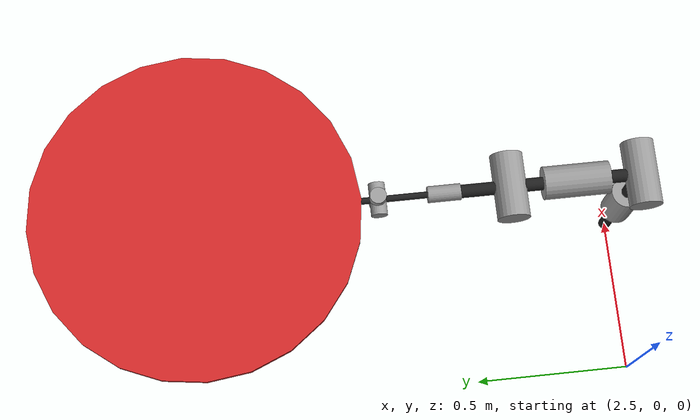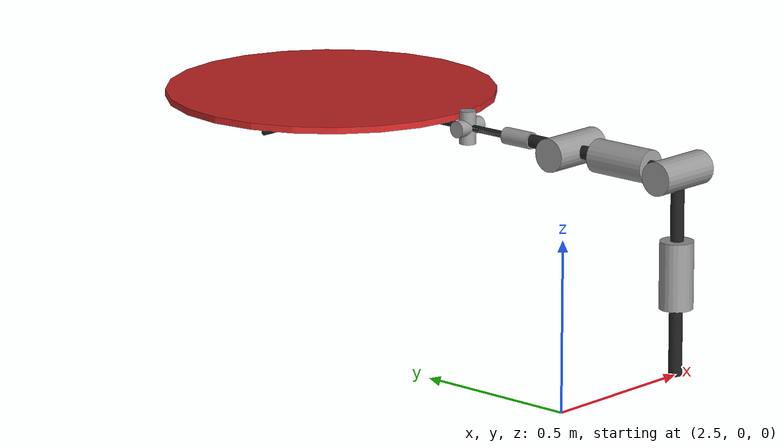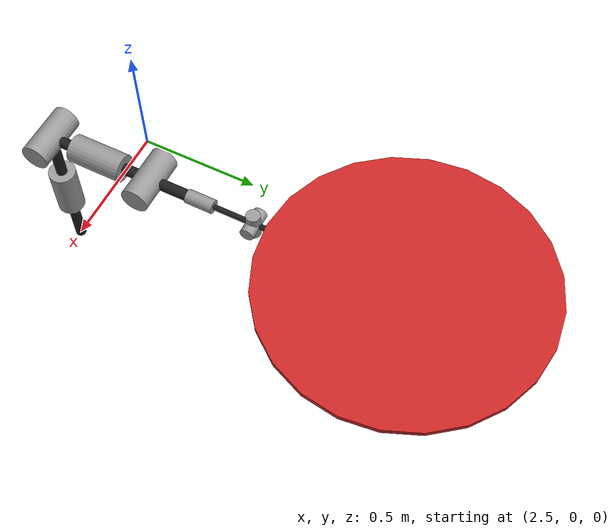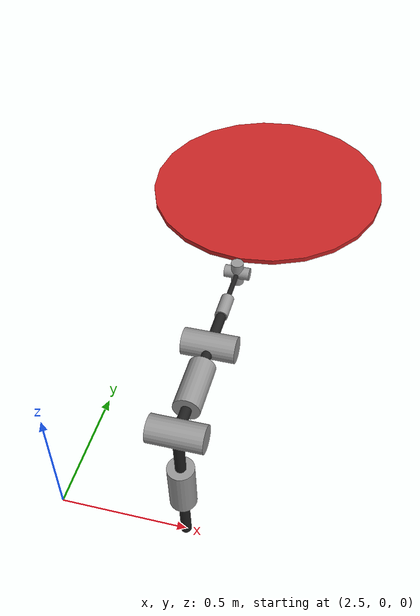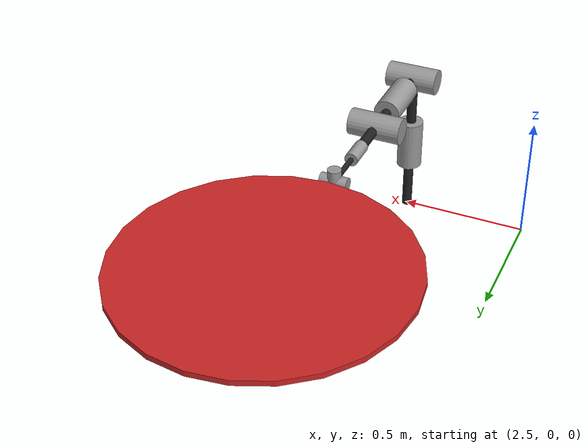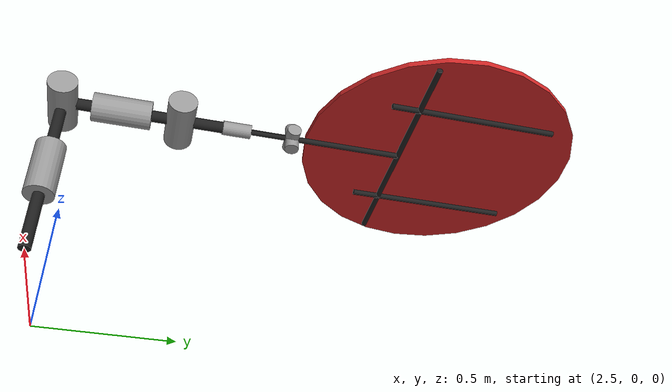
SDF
<?xml version='1.0'?>
<sdf version='1.7'>
  <model name='sevenbot3'>
    <joint name='attach-motor1' type='fixed'>
      <pose relative_to='__model__'>3 0 0 0 -0 0</pose>
      <parent>world</parent>
      <child>motor1</child>
    </joint>
    <link name='motor1'>
      <pose relative_to='attach-motor1'>0 0 0 0 -0 0</pose>
      <inertial>
        <pose>0 0 0.3 0 -0 0</pose>
        <mass>2</mass>
        <inertia>
          <ixx>0.007917</ixx>
          <ixy>0</ixy>
          <ixz>0</ixz>
          <iyy>0.007917</iyy>
          <iyz>0</iyz>
          <izz>0.0025</izz>
        </inertia>
      </inertial>
      <visual name='motor1_visual'>
        <pose>0 0 0.3 0 -0 0</pose>
        <geometry>
          <cylinder>
            <length>0.2</length>
            <radius>0.05</radius>
          </cylinder>
        </geometry>
        <material>
          <script>
            <name>Gazebo/Gray</name>
            <uri>file://media/materials/scripts/gazebo.material</uri>
          </script>
        </material>
      </visual>
      <gravity>1</gravity>
      <velocity_decay/>
    </link>
    <joint name='attach-mount1' type='fixed'>
      <pose relative_to='__model__'>3 0 0 0 -0 0</pose>
      <parent>world</parent>
      <child>mount1</child>
    </joint>
    <link name='mount1'>
      <pose relative_to='attach-mount1'>0 0 0 0 -0 0</pose>
      <inertial>
        <pose>0 0 0.1 0 -0 0</pose>
        <mass>0.2</mass>
        <inertia>
          <ixx>0.000687</ixx>
          <ixy>0</ixy>
          <ixz>0</ixz>
          <iyy>0.000687</iyy>
          <iyz>0</iyz>
          <izz>4e-05</izz>
        </inertia>
      </inertial>
      <visual name='mount1_visual'>
        <pose>0 0 0.1 0 -0 0</pose>
        <geometry>
          <cylinder>
            <length>0.2</length>
            <radius>0.02</radius>
          </cylinder>
        </geometry>
        <material>
          <script>
            <name>Gazebo/Black</name>
            <uri>file://media/materials/scripts/gazebo.material</uri>
          </script>
        </material>
      </visual>
      <gravity>1</gravity>
      <velocity_decay/>
    </link>
    <joint name='theta1' type='revolute'>
      <pose relative_to='__model__'>3 0 0.6 0 -0 0</pose>
      <parent>world</parent>
      <child>link1</child>
      <axis>
        <xyz>0 0 1</xyz>
        <limit>
          <lower>-1e+16</lower>
          <upper>1e+16</upper>
        </limit>
        <dynamics>
          <damping>0.5</damping>
          <friction>0</friction>
          <spring_reference>0</spring_reference>
          <spring_stiffness>0</spring_stiffness>
        </dynamics>
      </axis>
    </joint>
    <link name='link1'>
      <pose relative_to='theta1'>0 0 0 0 -0 0</pose>
      <inertial>
        <pose>0 0 -0.009091 0 -0 0</pose>
        <mass>2.2</mass>
        <inertia>
          <ixx>0.00500518</ixx>
          <ixy>0</ixy>
          <ixz>-3.31696e-19</ixz>
          <iyy>0.0104222</iyy>
          <iyz>0</iyz>
          <izz>0.007957</izz>
        </inertia>
      </inertial>
      <visual name='link1_fixed_joint_lump__motor2_visual'>
        <pose>0 0 0 0 1.5708 0</pose>
        <geometry>
          <cylinder>
            <length>0.2</length>
            <radius>0.05</radius>
          </cylinder>
        </geometry>
        <material>
          <script>
            <name>Gazebo/Gray</name>
            <uri>file://media/materials/scripts/gazebo.material</uri>
          </script>
        </material>
      </visual>
      <visual name='link1_fixed_joint_lump__mount2_visual_1'>
        <pose>0 0 -0.1 0 -0 0</pose>
        <geometry>
          <cylinder>
            <length>0.2</length>
            <radius>0.02</radius>
          </cylinder>
        </geometry>
        <material>
          <script>
            <name>Gazebo/Black</name>
            <uri>file://media/materials/scripts/gazebo.material</uri>
          </script>
        </material>
      </visual>
      <velocity_decay/>
      <gravity>1</gravity>
      <velocity_decay/>
    </link>
    <joint name='theta2' type='revolute'>
      <pose relative_to='link1'>0 0 0 0 -0 0</pose>
      <parent>link1</parent>
      <child>link2</child>
      <axis>
        <xyz>1 0 0</xyz>
        <limit>
          <lower>-1e+16</lower>
          <upper>1e+16</upper>
        </limit>
        <dynamics>
          <damping>1</damping>
          <friction>0</friction>
          <spring_reference>0</spring_reference>
          <spring_stiffness>0</spring_stiffness>
        </dynamics>
      </axis>
    </joint>
    <link name='link2'>
      <pose relative_to='theta2'>0 0 0 0 -0 0</pose>
      <inertial>
        <pose>0 0.190909 0 0 -0 0</pose>
        <mass>2.2</mass>
        <inertia>
          <ixx>0.0104222</ixx>
          <ixy>0</ixy>
          <ixz>0</ixz>
          <iyy>0.00254</iyy>
          <iyz>-2.22743e-08</iyz>
          <izz>0.0104222</izz>
        </inertia>
      </inertial>
      <visual name='link2_fixed_joint_lump__motor3_visual'>
        <pose>0 0.2 0 1.5708 -0 0</pose>
        <geometry>
          <cylinder>
            <length>0.2</length>
            <radius>0.05</radius>
          </cylinder>
        </geometry>
        <material>
          <script>
            <name>Gazebo/Gray</name>
            <uri>file://media/materials/scripts/gazebo.material</uri>
          </script>
        </material>
      </visual>
      <visual name='link2_fixed_joint_lump__mount3_visual_1'>
        <pose>0 0.1 0 1.5708 -0 0</pose>
        <geometry>
          <cylinder>
            <length>0.2</length>
            <radius>0.02</radius>
          </cylinder>
        </geometry>
        <material>
          <script>
            <name>Gazebo/Black</name>
            <uri>file://media/materials/scripts/gazebo.material</uri>
          </script>
        </material>
      </visual>
      <velocity_decay/>
      <gravity>1</gravity>
      <velocity_decay/>
    </link>
    <joint name='theta3' type='revolute'>
      <pose relative_to='link2'>0 0.4 0 0 -0 0</pose>
      <parent>link2</parent>
      <child>link3</child>
      <axis>
        <xyz>0 1 0</xyz>
        <limit>
          <lower>-1e+16</lower>
          <upper>1e+16</upper>
        </limit>
        <dynamics>
          <damping>0.05</damping>
          <friction>0</friction>
          <spring_reference>0</spring_reference>
          <spring_stiffness>0</spring_stiffness>
        </dynamics>
      </axis>
    </joint>
    <link name='link3'>
      <pose relative_to='theta3'>0 0 0 0 -0 0</pose>
      <inertial>
        <pose>0 -0.009091 0 0 -0 0</pose>
        <mass>2.2</mass>
        <inertia>
          <ixx>0.00500518</ixx>
          <ixy>0</ixy>
          <ixz>-3.31696e-19</ixz>
          <iyy>0.007957</iyy>
          <iyz>-2.37656e-09</iyz>
          <izz>0.0104222</izz>
        </inertia>
      </inertial>
      <visual name='link3_fixed_joint_lump__motor4_visual'>
        <pose>0 0 0 0 1.5708 0</pose>
        <geometry>
          <cylinder>
            <length>0.2</length>
            <radius>0.05</radius>
          </cylinder>
        </geometry>
        <material>
          <script>
            <name>Gazebo/Gray</name>
            <uri>file://media/materials/scripts/gazebo.material</uri>
          </script>
        </material>
      </visual>
      <visual name='link3_fixed_joint_lump__mount4_visual_1'>
        <pose>0 -0.1 0 1.5708 -0 0</pose>
        <geometry>
          <cylinder>
            <length>0.2</length>
            <radius>0.02</radius>
          </cylinder>
        </geometry>
        <material>
          <script>
            <name>Gazebo/Black</name>
            <uri>file://media/materials/scripts/gazebo.material</uri>
          </script>
        </material>
      </visual>
      <velocity_decay/>
      <gravity>1</gravity>
      <velocity_decay/>
    </link>
    <joint name='theta4' type='revolute'>
      <pose relative_to='link3'>0 0 0 0 -0 0</pose>
      <parent>link3</parent>
      <child>link4</child>
      <axis>
        <xyz>1 0 0</xyz>
        <limit>
          <lower>-1e+16</lower>
          <upper>1e+16</upper>
        </limit>
        <dynamics>
          <damping>0.1</damping>
          <friction>0</friction>
          <spring_reference>0</spring_reference>
          <spring_stiffness>0</spring_stiffness>
        </dynamics>
      </axis>
    </joint>
    <link name='link4'>
      <pose relative_to='theta4'>0 0 0 0 -0 0</pose>
      <inertial>
        <pose>0 0.183333 0 0 -0 0</pose>
        <mass>1.2</mass>
        <inertia>
          <ixx>0.00334367</ixx>
          <ixy>0</ixy>
          <ixz>0</ixz>
          <iyy>0.000353</iyy>
          <iyz>-4.86332e-09</iyz>
          <izz>0.00334367</izz>
        </inertia>
      </inertial>
      <visual name='link4_fixed_joint_lump__motor5_visual'>
        <pose>0 0.2 0 1.5708 -0 0</pose>
        <geometry>
          <cylinder>
            <length>0.1</length>
            <radius>0.025</radius>
          </cylinder>
        </geometry>
        <material>
          <script>
            <name>Gazebo/Gray</name>
            <uri>file://media/materials/scripts/gazebo.material</uri>
          </script>
        </material>
      </visual>
      <visual name='link4_fixed_joint_lump__mount5_visual_1'>
        <pose>0 0.1 0 1.5708 -0 0</pose>
        <geometry>
          <cylinder>
            <length>0.2</length>
            <radius>0.02</radius>
          </cylinder>
        </geometry>
        <material>
          <script>
            <name>Gazebo/Black</name>
            <uri>file://media/materials/scripts/gazebo.material</uri>
          </script>
        </material>
      </visual>
      <velocity_decay/>
      <gravity>1</gravity>
      <velocity_decay/>
    </link>
    <joint name='theta5' type='revolute'>
      <pose relative_to='link4'>0 0.4 0 0 -0 0</pose>
      <parent>link4</parent>
      <child>link5</child>
      <axis>
        <xyz>0 1 0</xyz>
        <limit>
          <lower>-1e+16</lower>
          <upper>1e+16</upper>
        </limit>
        <dynamics>
          <damping>0.02</damping>
          <friction>0</friction>
          <spring_reference>0</spring_reference>
          <spring_stiffness>0</spring_stiffness>
        </dynamics>
      </axis>
    </joint>
    <link name='link5'>
      <pose relative_to='theta5'>0 0 0 0 -0 0</pose>
      <inertial>
        <pose>0 -0.009091 0 0 -0 0</pose>
        <mass>1.1</mass>
        <inertia>
          <ixx>0.00223509</ixx>
          <ixy>0</ixy>
          <ixz>0</ixz>
          <iyy>0.000995</iyy>
          <iyz>-1.21583e-09</iyz>
          <izz>0.00155809</izz>
        </inertia>
      </inertial>
      <visual name='link5_fixed_joint_lump__motor6_visual'>
        <pose>0 0 0 0 -0 0</pose>
        <geometry>
          <cylinder>
            <length>0.1</length>
            <radius>0.025</radius>
          </cylinder>
        </geometry>
        <material>
          <script>
            <name>Gazebo/Gray</name>
            <uri>file://media/materials/scripts/gazebo.material</uri>
          </script>
        </material>
      </visual>
      <visual name='link5_fixed_joint_lump__mount6_visual_1'>
        <pose>0 -0.1 0 1.5708 -0 0</pose>
        <geometry>
          <cylinder>
            <length>0.2</length>
            <radius>0.01</radius>
          </cylinder>
        </geometry>
        <material>
          <script>
            <name>Gazebo/Black</name>
            <uri>file://media/materials/scripts/gazebo.material</uri>
          </script>
        </material>
      </visual>
      <velocity_decay/>
      <gravity>1</gravity>
      <velocity_decay/>
    </link>
    <joint name='theta6' type='revolute'>
      <pose relative_to='link5'>0 0 0 0 -0 0</pose>
      <parent>link5</parent>
      <child>link6</child>
      <axis>
        <xyz>0 0 1</xyz>
        <limit>
          <lower>-1e+16</lower>
          <upper>1e+16</upper>
        </limit>
        <dynamics>
          <damping>0.02</damping>
          <friction>0</friction>
          <spring_reference>0</spring_reference>
          <spring_stiffness>0</spring_stiffness>
        </dynamics>
      </axis>
    </joint>
    <link name='link6'>
      <pose relative_to='theta6'>0 0 0 0 -0 0</pose>
      <inertial>
        <pose>0 0 0 0 -0 0</pose>
        <mass>1</mass>
        <inertia>
          <ixx>0.000313</ixx>
          <ixy>0</ixy>
          <ixz>-4.14543e-20</ixz>
          <iyy>0.00099</iyy>
          <iyz>0</iyz>
          <izz>0.00099</izz>
        </inertia>
      </inertial>
      <visual name='link6_fixed_joint_lump__motor7_visual'>
        <pose>0 0 0 0 1.5708 0</pose>
        <geometry>
          <cylinder>
            <length>0.1</length>
            <radius>0.025</radius>
          </cylinder>
        </geometry>
        <material>
          <script>
            <name>Gazebo/Gray</name>
            <uri>file://media/materials/scripts/gazebo.material</uri>
          </script>
        </material>
      </visual>
      <gravity>1</gravity>
      <velocity_decay/>
    </link>
    <joint name='theta7' type='revolute'>
      <pose relative_to='link6'>0 0 0 0 -0 0</pose>
      <parent>link6</parent>
      <child>link7</child>
      <axis>
        <xyz>1 0 0</xyz>
        <limit>
          <lower>-1e+16</lower>
          <upper>1e+16</upper>
        </limit>
        <dynamics>
          <damping>0.02</damping>
          <friction>0</friction>
          <spring_reference>0</spring_reference>
          <spring_stiffness>0</spring_stiffness>
        </dynamics>
      </axis>
    </joint>
    <link name='link7'>
      <pose relative_to='theta7'>0 0 0 0 -0 0</pose>
      <inertial>
        <pose>0 0.55 0 0 -0 0</pose>
        <mass>.2</mass>
        <inertia>
          <ixx>0.0219918</ixx>
          <ixy>1.65436e-24</ixy>
          <ixz>-2.44929e-21</ixz>
          <iyy>0.007966</iyy>
          <iyz>-2.93856e-10</iyz>
          <izz>0.0282818</izz>
        </inertia>
      </inertial>
      <collision name='link7_fixed_joint_lump__cube_collision'>
        <pose>0 0.55 0 0 -0 0</pose>
        <geometry>
          <cylinder>
            <length>0.02</length>
            <radius>0.5</radius>
          </cylinder>
        </geometry>
        <surface>
          <bounce>
            <restitution_coefficient>1.0</restitution_coefficient>
            <threshold>.01</threshold>
          </bounce>
          <friction>
            <ode>
              <mu>0.00</mu>
              <mu2>0.00</mu2>
            </ode>
          </friction>
          <contact>
            <ode>
              <max_vel>10</max_vel>
            </ode>
          </contact>
        </surface>
      </collision>
      <visual name='link7_fixed_joint_lump__handbase_visual'>
        <pose>0 0.05 0 1.5708 -0 0</pose>
        <geometry>
          <cylinder>
            <length>0.7</length>
            <radius>0.01</radius>
          </cylinder>
        </geometry>
        <material>
          <script>
            <name>Gazebo/Black</name>
            <uri>file://media/materials/scripts/gazebo.material</uri>
          </script>
        </material>
      </visual>
      <visual name='link7_fixed_joint_lump__leftfinger_visual_1'>
        <pose>-0.25 0.6 0 1.5708 -0 0</pose>
        <geometry>
          <cylinder>
            <length>0.6</length>
            <radius>0.01</radius>
          </cylinder>
        </geometry>
        <material>
          <script>
            <name>Gazebo/Black</name>
            <uri>file://media/materials/scripts/gazebo.material</uri>
          </script>
        </material>
      </visual>
      <visual name='link7_fixed_joint_lump__palm_visual_2'>
        <pose>0 0.4 0 0 1.5708 0</pose>
        <geometry>
          <cylinder>
            <length>0.9</length>
            <radius>0.01</radius>
          </cylinder>
        </geometry>
        <material>
          <script>
            <name>Gazebo/Black</name>
            <uri>file://media/materials/scripts/gazebo.material</uri>
          </script>
        </material>
      </visual>
      <visual name='link7_fixed_joint_lump__rightfinger_visual_3'>
        <pose>0.25 0.6 0 1.5708 -0 0</pose>
        <geometry>
          <cylinder>
            <length>0.6</length>
            <radius>0.01</radius>
          </cylinder>
        </geometry>
        <material>
          <script>
            <name>Gazebo/Black</name>
            <uri>file://media/materials/scripts/gazebo.material</uri>
          </script>
        </material>
      </visual>
      <visual name='link7_fixed_joint_lump__cube_visual_4'>
        <pose>-3e-06 0.55 0.019999 0 -0 0</pose>
        <geometry>
          <cylinder>
            <length>0.02</length>
            <radius>0.5</radius>
          </cylinder>
        </geometry>
        <material>
          <script>
            <name>Gazebo/Red</name>
            <uri>file://media/materials/scripts/gazebo.material</uri>
          </script>
        </material>
      </visual>
      <velocity_decay/>
      <velocity_decay/>
      <velocity_decay/>
      <gravity>1</gravity>
      <velocity_decay/>
    </link>
    <static>0</static>
    <plugin name='gazebo_ros_control' filename='libgazebo_ros_control.so'>
      <robotNamespace>/sevenbot3</robotNamespace>
      <robotSimType>gazebo_ros_control/DefaultRobotHWSim</robotSimType>
    </plugin>
  </model>
</sdf>
